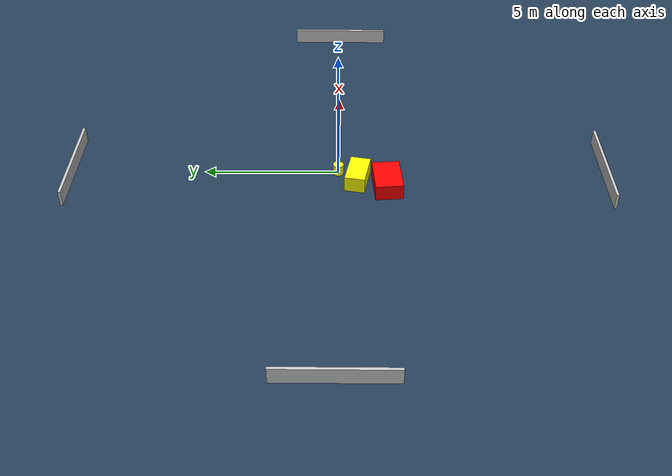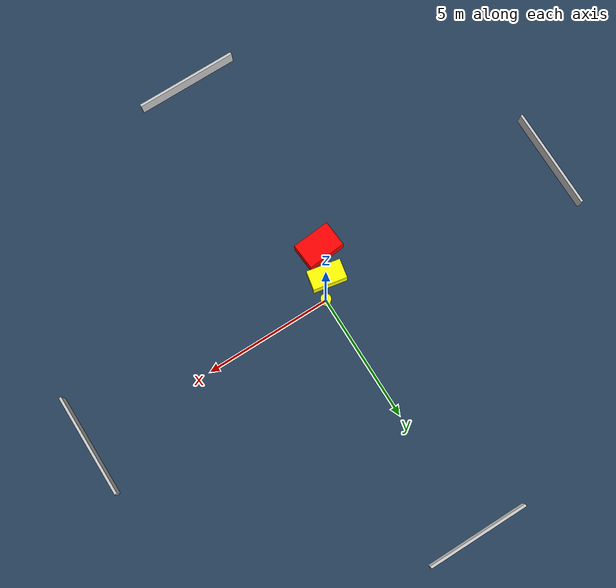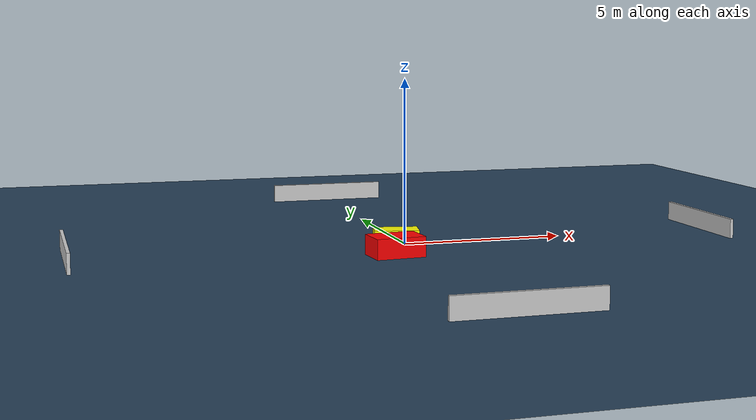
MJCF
<?xml version="1.0" ?>
<mujoco model="generated_environment">
  <option timestep="0.01" integrator="RK4" cone="elliptic"/>
  <default>
    <geom density="1"/>
  </default>
  <asset>
    <texture builtin="gradient" height="3072" name="skybox" rgb1="0.3 0.5 0.7" rgb2="0 0 0" type="skybox" width="512"/>
    <texture builtin="checker" height="300" name="groundplane" rgb1="0.2 0.3 0.4" rgb2="0.1 0.2 0.3" type="2d" width="300"/>
    <material name="groundplane" reflectance="0.2" texrepeat="5 5" texture="groundplane"/>
  </asset>
  <worldbody>
    <light dir="0 0 -1" directional="true" pos="0 0 1.5"/>
    <geom condim="3" friction="0.5 0.005 0.001" material="groundplane" name="floor" pos="0 0 0" size="0 0 0.05" type="plane"/>
    <body name="walls">
      <geom name="wall_1" condim="4" pos="-10.0 0.0 0.3" rgba="0.800000011920929 0.800000011920929 0.800000011920929 1.0" size="0.05 2.0 0.3" type="box"/>
      <geom name="wall_2" condim="4" pos="10.0 0.0 0.3" rgba="0.800000011920929 0.800000011920929 0.800000011920929 1.0" size="0.05 2.0 0.3" type="box"/>
      <geom name="wall_3" condim="4" pos="0.0 -10.0 0.3" rgba="0.800000011920929 0.800000011920929 0.800000011920929 1.0" size="2.0 0.05 0.3" type="box"/>
      <geom name="wall_4" condim="4" pos="0.0 10.0 0.3" rgba="0.800000011920929 0.800000011920929 0.800000011920929 1.0" size="2.0 0.05 0.3" type="box"/>
    </body>
    <body name="robot">
      <joint name="joint_x" type="slide" pos="0 0 0" axis="1 0 0"/>
      <joint name="joint_y" type="slide" pos="0 0 0" axis="0 1 0"/>
      <geom name="robot" type="cylinder" pos="0.0 0.0 0.2" size="0.2 0.2 0.0" mass="5.0" friction="1.0 0.005 0.0001" condim="4" rgba="1.0 1.0 0.0 1.0"/>
    </body>
    <body name="obstacle_1_movable">
      <geom name="obstacle_1_movable" condim="4" pos="-0.4900728045783485 -0.7222663477098649 0.3" euler="0 0 259.0921512053167" friction="0.0 0.005 0.001" rgba="1.0 1.0 0.0 1.0" size="0.37660724901420184 0.6613351106797312 0.3" type="box" mass="0.1"/>
      <joint type="free"/>
    </body>
    <body name="obstacle_2_static">
      <geom name="obstacle_2_static" condim="4" pos="-0.8296411012730585 -1.815811693401965 0.3" euler="0 0 184.71611574986377" friction="0.0 0.005 0.001" rgba="1.0 0.0 0.0 1.0" size="0.7467456140722641 0.511480838678239 0.3" type="box"/>
    </body>
  </worldbody>
  <actuator>
    <motor name="actuator_x" joint="joint_x" gear="1" ctrlrange="-1 1"/>
    <motor name="actuator_y" joint="joint_y" gear="1" ctrlrange="-1 1"/>
  </actuator>
</mujoco>
